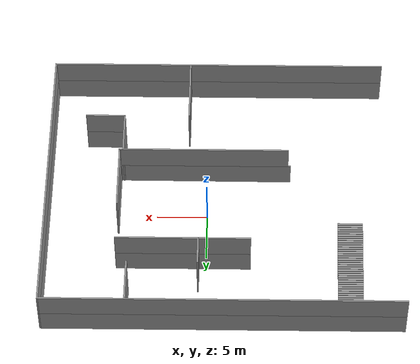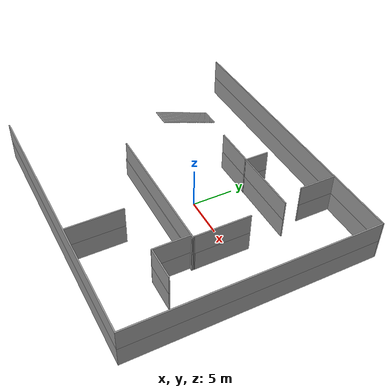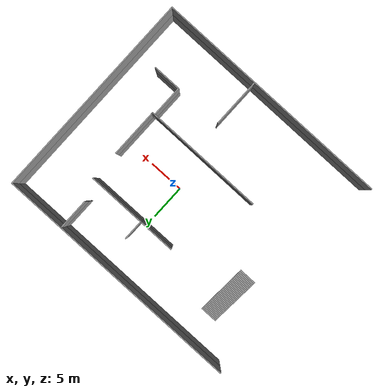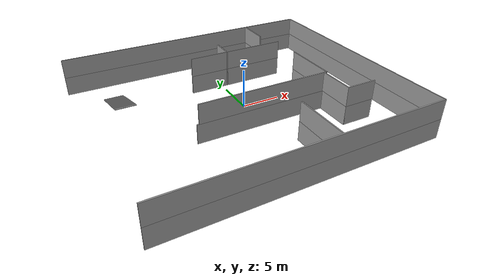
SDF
<sdf version="1.6">
 <model name="small_world">
  <pose>-1.73619 -1.30115 0 0 -0 0</pose>
  <link name="Stairs_3">
   <visual name="Stairs_3_Visual_0">
    <pose>-12.433 11.1173 0.035714 0 -0 0</pose>
    <geometry><box><size>2.5 0.214286 0.071429</size></box></geometry>
    <material>
     <script><uri>file://media/materials/scripts/gazebo.material</uri><name>Gazebo/Grey</name></script>
     <ambient>1 1 1 1</ambient>
    </material>
    <meta><layer>0</layer></meta>
   </visual>
   <collision name="Stairs_3_Collision_0">
    <geometry><box><size>2.5 0.214286 0.071429</size></box></geometry>
    <pose>-12.433 11.1173 0.035714 0 -0 0</pose>
   </collision>
   <visual name="Stairs_3_Visual_1">
    <pose>-12.433 10.903 0.107143 0 -0 0</pose>
    <geometry><box><size>2.5 0.214286 0.071429</size></box></geometry>
    <material>
     <script><uri>file://media/materials/scripts/gazebo.material</uri><name>Gazebo/Grey</name></script>
     <ambient>1 1 1 1</ambient>
    </material>
    <meta><layer>0</layer></meta>
   </visual>
   <collision name="Stairs_3_Collision_1">
    <geometry><box><size>2.5 0.214286 0.071429</size></box></geometry>
    <pose>-12.433 10.903 0.107143 0 -0 0</pose>
   </collision>
   <visual name="Stairs_3_Visual_2">
    <pose>-12.433 10.6887 0.178571 0 -0 0</pose>
    <geometry><box><size>2.5 0.214286 0.071429</size></box></geometry>
    <material>
     <script><uri>file://media/materials/scripts/gazebo.material</uri><name>Gazebo/Grey</name></script>
     <ambient>1 1 1 1</ambient>
    </material>
    <meta><layer>0</layer></meta>
   </visual>
   <collision name="Stairs_3_Collision_2">
    <geometry><box><size>2.5 0.214286 0.071429</size></box></geometry>
    <pose>-12.433 10.6887 0.178571 0 -0 0</pose>
   </collision>
   <visual name="Stairs_3_Visual_3">
    <pose>-12.433 10.4745 0.25 0 -0 0</pose>
    <geometry><box><size>2.5 0.214286 0.071429</size></box></geometry>
    <material>
     <script><uri>file://media/materials/scripts/gazebo.material</uri><name>Gazebo/Grey</name></script>
     <ambient>1 1 1 1</ambient>
    </material>
    <meta><layer>0</layer></meta>
   </visual>
   <collision name="Stairs_3_Collision_3">
    <geometry><box><size>2.5 0.214286 0.071429</size></box></geometry>
    <pose>-12.433 10.4745 0.25 0 -0 0</pose>
   </collision>
   <visual name="Stairs_3_Visual_4">
    <pose>-12.433 10.2602 0.321429 0 -0 0</pose>
    <geometry><box><size>2.5 0.214286 0.071429</size></box></geometry>
    <material>
     <script><uri>file://media/materials/scripts/gazebo.material</uri><name>Gazebo/Grey</name></script>
     <ambient>1 1 1 1</ambient>
    </material>
    <meta><layer>0</layer></meta>
   </visual>
   <collision name="Stairs_3_Collision_4">
    <geometry><box><size>2.5 0.214286 0.071429</size></box></geometry>
    <pose>-12.433 10.2602 0.321429 0 -0 0</pose>
   </collision>
   <visual name="Stairs_3_Visual_5">
    <pose>-12.433 10.0459 0.392857 0 -0 0</pose>
    <geometry><box><size>2.5 0.214286 0.071429</size></box></geometry>
    <material>
     <script><uri>file://media/materials/scripts/gazebo.material</uri><name>Gazebo/Grey</name></script>
     <ambient>1 1 1 1</ambient>
    </material>
    <meta><layer>0</layer></meta>
   </visual>
   <collision name="Stairs_3_Collision_5">
    <geometry><box><size>2.5 0.214286 0.071429</size></box></geometry>
    <pose>-12.433 10.0459 0.392857 0 -0 0</pose>
   </collision>
   <visual name="Stairs_3_Visual_6">
    <pose>-12.433 9.8316 0.464286 0 -0 0</pose>
    <geometry><box><size>2.5 0.214286 0.071429</size></box></geometry>
    <material>
     <script><uri>file://media/materials/scripts/gazebo.material</uri><name>Gazebo/Grey</name></script>
     <ambient>1 1 1 1</ambient>
    </material>
    <meta><layer>0</layer></meta>
   </visual>
   <collision name="Stairs_3_Collision_6">
    <geometry><box><size>2.5 0.214286 0.071429</size></box></geometry>
    <pose>-12.433 9.8316 0.464286 0 -0 0</pose>
   </collision>
   <visual name="Stairs_3_Visual_7">
    <pose>-12.433 9.61732 0.535714 0 -0 0</pose>
    <geometry><box><size>2.5 0.214286 0.071429</size></box></geometry>
    <material>
     <script><uri>file://media/materials/scripts/gazebo.material</uri><name>Gazebo/Grey</name></script>
     <ambient>1 1 1 1</ambient>
    </material>
    <meta><layer>0</layer></meta>
   </visual>
   <collision name="Stairs_3_Collision_7">
    <geometry><box><size>2.5 0.214286 0.071429</size></box></geometry>
    <pose>-12.433 9.61732 0.535714 0 -0 0</pose>
   </collision>
   <visual name="Stairs_3_Visual_8">
    <pose>-12.433 9.40303 0.607143 0 -0 0</pose>
    <geometry><box><size>2.5 0.214286 0.071429</size></box></geometry>
    <material>
     <script><uri>file://media/materials/scripts/gazebo.material</uri><name>Gazebo/Grey</name></script>
     <ambient>1 1 1 1</ambient>
    </material>
    <meta><layer>0</layer></meta>
   </visual>
   <collision name="Stairs_3_Collision_8">
    <geometry><box><size>2.5 0.214286 0.071429</size></box></geometry>
    <pose>-12.433 9.40303 0.607143 0 -0 0</pose>
   </collision>
   <visual name="Stairs_3_Visual_9">
    <pose>-12.433 9.18875 0.678571 0 -0 0</pose>
    <geometry><box><size>2.5 0.214286 0.071429</size></box></geometry>
    <material>
     <script><uri>file://media/materials/scripts/gazebo.material</uri><name>Gazebo/Grey</name></script>
     <ambient>1 1 1 1</ambient>
    </material>
    <meta><layer>0</layer></meta>
   </visual>
   <collision name="Stairs_3_Collision_9">
    <geometry><box><size>2.5 0.214286 0.071429</size></box></geometry>
    <pose>-12.433 9.18875 0.678571 0 -0 0</pose>
   </collision>
   <visual name="Stairs_3_Visual_10">
    <pose>-12.433 8.97446 0.75 0 -0 0</pose>
    <geometry><box><size>2.5 0.214286 0.071429</size></box></geometry>
    <material>
     <script><uri>file://media/materials/scripts/gazebo.material</uri><name>Gazebo/Grey</name></script>
     <ambient>1 1 1 1</ambient>
    </material>
    <meta><layer>0</layer></meta>
   </visual>
   <collision name="Stairs_3_Collision_10">
    <geometry><box><size>2.5 0.214286 0.071429</size></box></geometry>
    <pose>-12.433 8.97446 0.75 0 -0 0</pose>
   </collision>
   <visual name="Stairs_3_Visual_11">
    <pose>-12.433 8.76018 0.821429 0 -0 0</pose>
    <geometry><box><size>2.5 0.214286 0.071429</size></box></geometry>
    <material>
     <script><uri>file://media/materials/scripts/gazebo.material</uri><name>Gazebo/Grey</name></script>
     <ambient>1 1 1 1</ambient>
    </material>
    <meta><layer>0</layer></meta>
   </visual>
   <collision name="Stairs_3_Collision_11">
    <geometry><box><size>2.5 0.214286 0.071429</size></box></geometry>
    <pose>-12.433 8.76018 0.821429 0 -0 0</pose>
   </collision>
   <visual name="Stairs_3_Visual_12">
    <pose>-12.433 8.54589 0.892857 0 -0 0</pose>
    <geometry><box><size>2.5 0.214286 0.071429</size></box></geometry>
    <material>
     <script><uri>file://media/materials/scripts/gazebo.material</uri><name>Gazebo/Grey</name></script>
     <ambient>1 1 1 1</ambient>
    </material>
    <meta><layer>0</layer></meta>
   </visual>
   <collision name="Stairs_3_Collision_12">
    <geometry><box><size>2.5 0.214286 0.071429</size></box></geometry>
    <pose>-12.433 8.54589 0.892857 0 -0 0</pose>
   </collision>
   <visual name="Stairs_3_Visual_13">
    <pose>-12.433 8.3316 0.964286 0 -0 0</pose>
    <geometry><box><size>2.5 0.214286 0.071429</size></box></geometry>
    <material>
     <script><uri>file://media/materials/scripts/gazebo.material</uri><name>Gazebo/Grey</name></script>
     <ambient>1 1 1 1</ambient>
    </material>
    <meta><layer>0</layer></meta>
   </visual>
   <collision name="Stairs_3_Collision_13">
    <geometry><box><size>2.5 0.214286 0.071429</size></box></geometry>
    <pose>-12.433 8.3316 0.964286 0 -0 0</pose>
   </collision>
   <visual name="Stairs_3_Visual_14">
    <pose>-12.433 8.11732 1.03571 0 -0 0</pose>
    <geometry><box><size>2.5 0.214286 0.071429</size></box></geometry>
    <material>
     <script><uri>file://media/materials/scripts/gazebo.material</uri><name>Gazebo/Grey</name></script>
     <ambient>1 1 1 1</ambient>
    </material>
    <meta><layer>0</layer></meta>
   </visual>
   <collision name="Stairs_3_Collision_14">
    <geometry><box><size>2.5 0.214286 0.071429</size></box></geometry>
    <pose>-12.433 8.11732 1.03571 0 -0 0</pose>
   </collision>
   <visual name="Stairs_3_Visual_15">
    <pose>-12.433 7.90303 1.10714 0 -0 0</pose>
    <geometry><box><size>2.5 0.214286 0.071429</size></box></geometry>
    <material>
     <script><uri>file://media/materials/scripts/gazebo.material</uri><name>Gazebo/Grey</name></script>
     <ambient>1 1 1 1</ambient>
    </material>
    <meta><layer>0</layer></meta>
   </visual>
   <collision name="Stairs_3_Collision_15">
    <geometry><box><size>2.5 0.214286 0.071429</size></box></geometry>
    <pose>-12.433 7.90303 1.10714 0 -0 0</pose>
   </collision>
   <visual name="Stairs_3_Visual_16">
    <pose>-12.433 7.68875 1.17857 0 -0 0</pose>
    <geometry><box><size>2.5 0.214286 0.071429</size></box></geometry>
    <material>
     <script><uri>file://media/materials/scripts/gazebo.material</uri><name>Gazebo/Grey</name></script>
     <ambient>1 1 1 1</ambient>
    </material>
    <meta><layer>0</layer></meta>
   </visual>
   <collision name="Stairs_3_Collision_16">
    <geometry><box><size>2.5 0.214286 0.071429</size></box></geometry>
    <pose>-12.433 7.68875 1.17857 0 -0 0</pose>
   </collision>
   <visual name="Stairs_3_Visual_17">
    <pose>-12.433 7.47446 1.25 0 -0 0</pose>
    <geometry><box><size>2.5 0.214286 0.071429</size></box></geometry>
    <material>
     <script><uri>file://media/materials/scripts/gazebo.material</uri><name>Gazebo/Grey</name></script>
     <ambient>1 1 1 1</ambient>
    </material>
    <meta><layer>0</layer></meta>
   </visual>
   <collision name="Stairs_3_Collision_17">
    <geometry><box><size>2.5 0.214286 0.071429</size></box></geometry>
    <pose>-12.433 7.47446 1.25 0 -0 0</pose>
   </collision>
   <visual name="Stairs_3_Visual_18">
    <pose>-12.433 7.26018 1.32143 0 -0 0</pose>
    <geometry><box><size>2.5 0.214286 0.071429</size></box></geometry>
    <material>
     <script><uri>file://media/materials/scripts/gazebo.material</uri><name>Gazebo/Grey</name></script>
     <ambient>1 1 1 1</ambient>
    </material>
    <meta><layer>0</layer></meta>
   </visual>
   <collision name="Stairs_3_Collision_18">
    <geometry><box><size>2.5 0.214286 0.071429</size></box></geometry>
    <pose>-12.433 7.26018 1.32143 0 -0 0</pose>
   </collision>
   <visual name="Stairs_3_Visual_19">
    <pose>-12.433 7.04589 1.39286 0 -0 0</pose>
    <geometry><box><size>2.5 0.214286 0.071429</size></box></geometry>
    <material>
     <script><uri>file://media/materials/scripts/gazebo.material</uri><name>Gazebo/Grey</name></script>
     <ambient>1 1 1 1</ambient>
    </material>
    <meta><layer>0</layer></meta>
   </visual>
   <collision name="Stairs_3_Collision_19">
    <geometry><box><size>2.5 0.214286 0.071429</size></box></geometry>
    <pose>-12.433 7.04589 1.39286 0 -0 0</pose>
   </collision>
   <visual name="Stairs_3_Visual_20">
    <pose>-12.433 6.8316 1.46429 0 -0 0</pose>
    <geometry><box><size>2.5 0.214286 0.071429</size></box></geometry>
    <material>
     <script><uri>file://media/materials/scripts/gazebo.material</uri><name>Gazebo/Grey</name></script>
     <ambient>1 1 1 1</ambient>
    </material>
    <meta><layer>0</layer></meta>
   </visual>
   <collision name="Stairs_3_Collision_20">
    <geometry><box><size>2.5 0.214286 0.071429</size></box></geometry>
    <pose>-12.433 6.8316 1.46429 0 -0 0</pose>
   </collision>
   <visual name="Stairs_3_Visual_21">
    <pose>-12.433 6.61732 1.53571 0 -0 0</pose>
    <geometry><box><size>2.5 0.214286 0.071429</size></box></geometry>
    <material>
     <script><uri>file://media/materials/scripts/gazebo.material</uri><name>Gazebo/Grey</name></script>
     <ambient>1 1 1 1</ambient>
    </material>
    <meta><layer>0</layer></meta>
   </visual>
   <collision name="Stairs_3_Collision_21">
    <geometry><box><size>2.5 0.214286 0.071429</size></box></geometry>
    <pose>-12.433 6.61732 1.53571 0 -0 0</pose>
   </collision>
   <visual name="Stairs_3_Visual_22">
    <pose>-12.433 6.40303 1.60714 0 -0 0</pose>
    <geometry><box><size>2.5 0.214286 0.071429</size></box></geometry>
    <material>
     <script><uri>file://media/materials/scripts/gazebo.material</uri><name>Gazebo/Grey</name></script>
     <ambient>1 1 1 1</ambient>
    </material>
    <meta><layer>0</layer></meta>
   </visual>
   <collision name="Stairs_3_Collision_22">
    <geometry><box><size>2.5 0.214286 0.071429</size></box></geometry>
    <pose>-12.433 6.40303 1.60714 0 -0 0</pose>
   </collision>
   <visual name="Stairs_3_Visual_23">
    <pose>-12.433 6.18875 1.67857 0 -0 0</pose>
    <geometry><box><size>2.5 0.214286 0.071429</size></box></geometry>
    <material>
     <script><uri>file://media/materials/scripts/gazebo.material</uri><name>Gazebo/Grey</name></script>
     <ambient>1 1 1 1</ambient>
    </material>
    <meta><layer>0</layer></meta>
   </visual>
   <collision name="Stairs_3_Collision_23">
    <geometry><box><size>2.5 0.214286 0.071429</size></box></geometry>
    <pose>-12.433 6.18875 1.67857 0 -0 0</pose>
   </collision>
   <visual name="Stairs_3_Visual_24">
    <pose>-12.433 5.97446 1.75 0 -0 0</pose>
    <geometry><box><size>2.5 0.214286 0.071429</size></box></geometry>
    <material>
     <script><uri>file://media/materials/scripts/gazebo.material</uri><name>Gazebo/Grey</name></script>
     <ambient>1 1 1 1</ambient>
    </material>
    <meta><layer>0</layer></meta>
   </visual>
   <collision name="Stairs_3_Collision_24">
    <geometry><box><size>2.5 0.214286 0.071429</size></box></geometry>
    <pose>-12.433 5.97446 1.75 0 -0 0</pose>
   </collision>
   <visual name="Stairs_3_Visual_25">
    <pose>-12.433 5.76018 1.82143 0 -0 0</pose>
    <geometry><box><size>2.5 0.214286 0.071429</size></box></geometry>
    <material>
     <script><uri>file://media/materials/scripts/gazebo.material</uri><name>Gazebo/Grey</name></script>
     <ambient>1 1 1 1</ambient>
    </material>
    <meta><layer>0</layer></meta>
   </visual>
   <collision name="Stairs_3_Collision_25">
    <geometry><box><size>2.5 0.214286 0.071429</size></box></geometry>
    <pose>-12.433 5.76018 1.82143 0 -0 0</pose>
   </collision>
   <visual name="Stairs_3_Visual_26">
    <pose>-12.433 5.54589 1.89286 0 -0 0</pose>
    <geometry><box><size>2.5 0.214286 0.071429</size></box></geometry>
    <material>
     <script><uri>file://media/materials/scripts/gazebo.material</uri><name>Gazebo/Grey</name></script>
     <ambient>1 1 1 1</ambient>
    </material>
    <meta><layer>0</layer></meta>
   </visual>
   <collision name="Stairs_3_Collision_26">
    <geometry><box><size>2.5 0.214286 0.071429</size></box></geometry>
    <pose>-12.433 5.54589 1.89286 0 -0 0</pose>
   </collision>
   <visual name="Stairs_3_Visual_27">
    <pose>-12.433 5.3316 1.96429 0 -0 0</pose>
    <geometry><box><size>2.5 0.214286 0.071429</size></box></geometry>
    <material>
     <script><uri>file://media/materials/scripts/gazebo.material</uri><name>Gazebo/Grey</name></script>
     <ambient>1 1 1 1</ambient>
    </material>
    <meta><layer>0</layer></meta>
   </visual>
   <collision name="Stairs_3_Collision_27">
    <geometry><box><size>2.5 0.214286 0.071429</size></box></geometry>
    <pose>-12.433 5.3316 1.96429 0 -0 0</pose>
   </collision>
   <visual name="Stairs_3_Visual_28">
    <pose>-12.433 5.11732 2.03571 0 -0 0</pose>
    <geometry><box><size>2.5 0.214286 0.071429</size></box></geometry>
    <material>
     <script><uri>file://media/materials/scripts/gazebo.material</uri><name>Gazebo/Grey</name></script>
     <ambient>1 1 1 1</ambient>
    </material>
    <meta><layer>0</layer></meta>
   </visual>
   <collision name="Stairs_3_Collision_28">
    <geometry><box><size>2.5 0.214286 0.071429</size></box></geometry>
    <pose>-12.433 5.11732 2.03571 0 -0 0</pose>
   </collision>
   <visual name="Stairs_3_Visual_29">
    <pose>-12.433 4.90303 2.10714 0 -0 0</pose>
    <geometry><box><size>2.5 0.214286 0.071429</size></box></geometry>
    <material>
     <script><uri>file://media/materials/scripts/gazebo.material</uri><name>Gazebo/Grey</name></script>
     <ambient>1 1 1 1</ambient>
    </material>
    <meta><layer>0</layer></meta>
   </visual>
   <collision name="Stairs_3_Collision_29">
    <geometry><box><size>2.5 0.214286 0.071429</size></box></geometry>
    <pose>-12.433 4.90303 2.10714 0 -0 0</pose>
   </collision>
   <visual name="Stairs_3_Visual_30">
    <pose>-12.433 4.68875 2.17857 0 -0 0</pose>
    <geometry><box><size>2.5 0.214286 0.071429</size></box></geometry>
    <material>
     <script><uri>file://media/materials/scripts/gazebo.material</uri><name>Gazebo/Grey</name></script>
     <ambient>1 1 1 1</ambient>
    </material>
    <meta><layer>0</layer></meta>
   </visual>
   <collision name="Stairs_3_Collision_30">
    <geometry><box><size>2.5 0.214286 0.071429</size></box></geometry>
    <pose>-12.433 4.68875 2.17857 0 -0 0</pose>
   </collision>
   <visual name="Stairs_3_Visual_31">
    <pose>-12.433 4.47446 2.25 0 -0 0</pose>
    <geometry><box><size>2.5 0.214286 0.071429</size></box></geometry>
    <material>
     <script><uri>file://media/materials/scripts/gazebo.material</uri><name>Gazebo/Grey</name></script>
     <ambient>1 1 1 1</ambient>
    </material>
    <meta><layer>0</layer></meta>
   </visual>
   <collision name="Stairs_3_Collision_31">
    <geometry><box><size>2.5 0.214286 0.071429</size></box></geometry>
    <pose>-12.433 4.47446 2.25 0 -0 0</pose>
   </collision>
   <visual name="Stairs_3_Visual_32">
    <pose>-12.433 4.26018 2.32143 0 -0 0</pose>
    <geometry><box><size>2.5 0.214286 0.071429</size></box></geometry>
    <material>
     <script><uri>file://media/materials/scripts/gazebo.material</uri><name>Gazebo/Grey</name></script>
     <ambient>1 1 1 1</ambient>
    </material>
    <meta><layer>0</layer></meta>
   </visual>
   <collision name="Stairs_3_Collision_32">
    <geometry><box><size>2.5 0.214286 0.071429</size></box></geometry>
    <pose>-12.433 4.26018 2.32143 0 -0 0</pose>
   </collision>
   <visual name="Stairs_3_Visual_33">
    <pose>-12.433 4.04589 2.39286 0 -0 0</pose>
    <geometry><box><size>2.5 0.214286 0.071429</size></box></geometry>
    <material>
     <script><uri>file://media/materials/scripts/gazebo.material</uri><name>Gazebo/Grey</name></script>
     <ambient>1 1 1 1</ambient>
    </material>
    <meta><layer>0</layer></meta>
   </visual>
   <collision name="Stairs_3_Collision_33">
    <geometry><box><size>2.5 0.214286 0.071429</size></box></geometry>
    <pose>-12.433 4.04589 2.39286 0 -0 0</pose>
   </collision>
   <visual name="Stairs_3_Visual_34">
    <pose>-12.433 3.83161 2.46429 0 -0 0</pose>
    <geometry><box><size>2.5 0.214286 0.071429</size></box></geometry>
    <material>
     <script><uri>file://media/materials/scripts/gazebo.material</uri><name>Gazebo/Grey</name></script>
     <ambient>1 1 1 1</ambient>
    </material>
    <meta><layer>0</layer></meta>
   </visual>
   <collision name="Stairs_3_Collision_34">
    <geometry><box><size>2.5 0.214286 0.071429</size></box></geometry>
    <pose>-12.433 3.83161 2.46429 0 -0 0</pose>
   </collision>
  </link>
  <link name="Wall_1">
   <collision name="Wall_1_Collision">
    <geometry><box><size>33.75 0.15 2.5</size></box></geometry>
    <pose>0 0 1.25 0 -0 0</pose>
   </collision>
   <visual name="Wall_1_Visual">
    <pose>0 0 1.25 0 -0 0</pose>
    <geometry><box><size>33.75 0.15 2.5</size></box></geometry>
    <material>
     <script><uri>file://media/materials/scripts/gazebo.material</uri><name>Gazebo/Grey</name></script>
     <ambient>1 1 1 1</ambient>
    </material>
    <meta><layer>0</layer></meta>
   </visual>
   <pose>0.788904 -14.7928 0 0 -0 0</pose>
  </link>
  <link name="Wall_2">
   <collision name="Wall_2_Collision">
    <geometry><box><size>29.75 0.15 2.5</size></box></geometry>
    <pose>0 0 1.25 0 -0 0</pose>
   </collision>
   <visual name="Wall_2_Visual">
    <pose>0 0 1.25 0 -0 0</pose>
    <geometry><box><size>29.75 0.15 2.5</size></box></geometry>
    <material>
     <script><uri>file://media/materials/scripts/gazebo.material</uri><name>Gazebo/Grey</name></script>
     <ambient>1 1 1 1</ambient>
    </material>
    <meta><layer>0</layer></meta>
   </visual>
   <pose>17.5889 0.007225 0 0 -0 1.5708</pose>
  </link>
  <link name="Wall_3">
   <collision name="Wall_3_Collision">
    <geometry><box><size>35.25 0.15 2.5</size></box></geometry>
    <pose>0 0 1.25 0 -0 0</pose>
   </collision>
   <visual name="Wall_3_Visual">
    <pose>0 0 1.25 0 -0 0</pose>
    <geometry><box><size>35.25 0.15 2.5</size></box></geometry>
    <material>
     <script><uri>file://media/materials/scripts/gazebo.material</uri><name>Gazebo/Grey</name></script>
     <ambient>1 1 1 1</ambient>
    </material>
    <meta><layer>0</layer></meta>
   </visual>
   <pose>0.038904 14.8072 0 0 -0 3.14159</pose>
  </link>
  <link name="Wall_34">
   <collision name="Wall_34_Collision">
    <geometry><box><size>13.25 0.15 2.5</size></box></geometry>
    <pose>0 0 1.25 0 -0 0</pose>
   </collision>
   <visual name="Wall_34_Visual">
    <pose>0 0 1.25 0 -0 0</pose>
    <geometry><box><size>13.25 0.15 2.5</size></box></geometry>
    <material>
     <script><uri>file://media/materials/scripts/gazebo.material</uri><name>Gazebo/Grey</name></script>
     <ambient>1 1 1 1</ambient>
    </material>
    <meta><layer>0</layer></meta>
   </visual>
   <pose>3.9889 7.55722 0 0 -0 0</pose>
  </link>
  <link name="Wall_36">
   <collision name="Wall_36_Collision">
    <geometry><box><size>17.2501 0.15 2.5</size></box></geometry>
    <pose>0 0 1.25 0 -0 0</pose>
   </collision>
   <visual name="Wall_36_Visual">
    <pose>0 0 1.25 0 -0 0</pose>
    <geometry><box><size>17.2501 0.15 2.5</size></box></geometry>
    <material>
     <script><uri>file://media/materials/scripts/gazebo.material</uri><name>Gazebo/Grey</name></script>
     <ambient>1 1 1 1</ambient>
    </material>
    <meta><layer>0</layer></meta>
   </visual>
   <pose>1.99377 -3.49918 0 0 -0 -0.003558</pose>
  </link>
  <link name="Wall_39">
   <collision name="Wall_39_Collision">
    <geometry><box><size>0.389409 0.15 2.5</size></box></geometry>
    <pose>0 0 1.25 0 -0 0</pose>
   </collision>
   <visual name="Wall_39_Visual">
    <pose>0 0 1.25 0 -0 0</pose>
    <geometry><box><size>0.389409 0.15 2.5</size></box></geometry>
    <material>
     <script><uri>file://media/materials/scripts/gazebo.material</uri><name>Gazebo/Grey</name></script>
     <ambient>1 1 1 1</ambient>
    </material>
    <meta><layer>0</layer></meta>
   </visual>
   <pose>10.5213 -3.41118 0 0 -0 -1.71809</pose>
  </link>
  <link name="Wall_41">
   <collision name="Wall_41_Collision">
    <geometry><box><size>6.75 0.15 2.5</size></box></geometry>
    <pose>0 0 1.25 0 -0 0</pose>
   </collision>
   <visual name="Wall_41_Visual">
    <pose>0 0 1.25 0 -0 0</pose>
    <geometry><box><size>6.75 0.15 2.5</size></box></geometry>
    <material>
     <script><uri>file://media/materials/scripts/gazebo.material</uri><name>Gazebo/Grey</name></script>
     <ambient>1 1 1 1</ambient>
    </material>
    <meta><layer>0</layer></meta>
   </visual>
   <pose>10.5389 0.007225 0 0 -0 1.5708</pose>
  </link>
  <link name="Wall_43">
   <collision name="Wall_43_Collision">
    <geometry><box><size>3 0.15 2.5</size></box></geometry>
    <pose>0 0 1.25 0 -0 0</pose>
   </collision>
   <visual name="Wall_43_Visual">
    <pose>0 0 1.25 0 -0 0</pose>
    <geometry><box><size>3 0.15 2.5</size></box></geometry>
    <material>
     <script><uri>file://media/materials/scripts/gazebo.material</uri><name>Gazebo/Grey</name></script>
     <ambient>1 1 1 1</ambient>
    </material>
    <meta><layer>0</layer></meta>
   </visual>
   <pose>2.49219 8.93692 0 0 -0 1.5708</pose>
  </link>
  <link name="Wall_45">
   <collision name="Wall_45_Collision">
    <geometry><box><size>4.5 0.15 2.5</size></box></geometry>
    <pose>0 0 1.25 0 -0 0</pose>
   </collision>
   <visual name="Wall_45_Visual">
    <pose>0 0 1.25 0 -0 0</pose>
    <geometry><box><size>4.5 0.15 2.5</size></box></geometry>
    <material>
     <script><uri>file://media/materials/scripts/gazebo.material</uri><name>Gazebo/Grey</name></script>
     <ambient>1 1 1 1</ambient>
    </material>
    <meta><layer>0</layer></meta>
   </visual>
   <pose>9.34051 12.6133 0 0 -0 -1.5708</pose>
  </link>
  <link name="Wall_47">
   <collision name="Wall_47_Collision">
    <geometry><box><size>4.5 0.15 2.5</size></box></geometry>
    <pose>0 0 1.25 0 -0 0</pose>
   </collision>
   <visual name="Wall_47_Visual">
    <pose>0 0 1.25 0 -0 0</pose>
    <geometry><box><size>4.5 0.15 2.5</size></box></geometry>
    <material>
     <script><uri>file://media/materials/scripts/gazebo.material</uri><name>Gazebo/Grey</name></script>
     <ambient>1 1 1 1</ambient>
    </material>
    <meta><layer>0</layer></meta>
   </visual>
   <pose>10.1965 -5.68459 0 0 -0 -1.5708</pose>
  </link>
  <link name="Wall_48">
   <collision name="Wall_48_Collision">
    <geometry><box><size>4 0.15 2.5</size></box></geometry>
    <pose>0 0 1.25 0 -0 0</pose>
   </collision>
   <visual name="Wall_48_Visual">
    <pose>0 0 1.25 0 -0 0</pose>
    <geometry><box><size>4 0.15 2.5</size></box></geometry>
    <material>
     <script><uri>file://media/materials/scripts/gazebo.material</uri><name>Gazebo/Grey</name></script>
     <ambient>1 1 1 1</ambient>
    </material>
    <meta><layer>0</layer></meta>
   </visual>
   <pose>12.1215 -7.85959 0 0 -0 0</pose>
  </link>
  <link name="Wall_50">
   <collision name="Wall_50_Collision">
    <geometry><box><size>6.75 0.15 2.5</size></box></geometry>
    <pose>0 0 1.25 0 -0 0</pose>
   </collision>
   <visual name="Wall_50_Visual">
    <pose>0 0 1.25 0 -0 0</pose>
    <geometry><box><size>6.75 0.15 2.5</size></box></geometry>
    <material>
     <script><uri>file://media/materials/scripts/gazebo.material</uri><name>Gazebo/Grey</name></script>
     <ambient>1 1 1 1</ambient>
    </material>
    <meta><layer>0</layer></meta>
   </visual>
   <pose>3.66924 -11.3381 0 0 -0 1.5708</pose>
  </link>
  <link name="Wall_66">
   <collision name="Wall_66_Collision">
    <geometry><box><size>33.75 0.15 2.5</size></box></geometry>
    <pose>0 0 1.25 0 -0 0</pose>
   </collision>
   <visual name="Wall_66_Visual">
    <pose>0 0 1.25 0 -0 0</pose>
    <geometry><box><size>33.75 0.15 2.5</size></box></geometry>
    <material>
     <script><uri>file://media/materials/scripts/gazebo.material</uri><name>Gazebo/Grey</name></script>
     <ambient>1 1 1 1</ambient>
    </material>
    <meta><layer>1</layer></meta>
   </visual>
   <pose>0.788904 -14.7928 2.5 0 -0 0</pose>
  </link>
  <link name="Wall_67">
   <collision name="Wall_67_Collision">
    <geometry><box><size>29.75 0.15 2.5</size></box></geometry>
    <pose>0 0 1.25 0 -0 0</pose>
   </collision>
   <visual name="Wall_67_Visual">
    <pose>0 0 1.25 0 -0 0</pose>
    <geometry><box><size>29.75 0.15 2.5</size></box></geometry>
    <material>
     <script><uri>file://media/materials/scripts/gazebo.material</uri><name>Gazebo/Grey</name></script>
     <ambient>1 1 1 1</ambient>
    </material>
    <meta><layer>1</layer></meta>
   </visual>
   <pose>17.5889 0.007225 2.5 0 -0 1.5708</pose>
  </link>
  <link name="Wall_68">
   <collision name="Wall_68_Collision">
    <geometry><box><size>35.25 0.15 2.5</size></box></geometry>
    <pose>0 0 1.25 0 -0 0</pose>
   </collision>
   <visual name="Wall_68_Visual">
    <pose>0 0 1.25 0 -0 0</pose>
    <geometry><box><size>35.25 0.15 2.5</size></box></geometry>
    <material>
     <script><uri>file://media/materials/scripts/gazebo.material</uri><name>Gazebo/Grey</name></script>
     <ambient>1 1 1 1</ambient>
    </material>
    <meta><layer>1</layer></meta>
   </visual>
   <pose>0.038904 14.8072 2.5 0 -0 3.14159</pose>
  </link>
  <link name="Wall_75">
   <collision name="Wall_75_Collision">
    <geometry><box><size>13.25 0.15 2.5</size></box></geometry>
    <pose>0 0 1.25 0 -0 0</pose>
   </collision>
   <visual name="Wall_75_Visual">
    <pose>0 0 1.25 0 -0 0</pose>
    <geometry><box><size>13.25 0.15 2.5</size></box></geometry>
    <material>
     <script><uri>file://media/materials/scripts/gazebo.material</uri><name>Gazebo/Grey</name></script>
     <ambient>1 1 1 1</ambient>
    </material>
    <meta><layer>1</layer></meta>
   </visual>
   <pose>3.9889 7.55722 2.5 0 -0 0</pose>
  </link>
  <link name="Wall_77">
   <collision name="Wall_77_Collision">
    <geometry><box><size>0.327223 0.15 2.5</size></box></geometry>
    <pose>0 0 1.25 0 -0 0</pose>
   </collision>
   <visual name="Wall_77_Visual">
    <pose>0 0 1.25 0 -0 0</pose>
    <geometry><box><size>0.327223 0.15 2.5</size></box></geometry>
    <material>
     <script><uri>file://media/materials/scripts/gazebo.material</uri><name>Gazebo/Grey</name></script>
     <ambient>1 1 1 1</ambient>
    </material>
    <meta><layer>1</layer></meta>
   </visual>
   <pose>10.5413 -3.38135 2.5 0 -0 -1.54334</pose>
  </link>
  <link name="Wall_78">
   <collision name="Wall_78_Collision">
    <geometry><box><size>6.75 0.15 2.5</size></box></geometry>
    <pose>0 0 1.25 0 -0 0</pose>
   </collision>
   <visual name="Wall_78_Visual">
    <pose>0 0 1.25 0 -0 0</pose>
    <geometry><box><size>6.75 0.15 2.5</size></box></geometry>
    <material>
     <script><uri>file://media/materials/scripts/gazebo.material</uri><name>Gazebo/Grey</name></script>
     <ambient>1 1 1 1</ambient>
    </material>
    <meta><layer>1</layer></meta>
   </visual>
   <pose>10.5389 0.007225 2.5 0 -0 1.5708</pose>
  </link>
  <link name="Wall_79">
   <collision name="Wall_79_Collision">
    <geometry><box><size>3 0.15 2.5</size></box></geometry>
    <pose>0 0 1.25 0 -0 0</pose>
   </collision>
   <visual name="Wall_79_Visual">
    <pose>0 0 1.25 0 -0 0</pose>
    <geometry><box><size>3 0.15 2.5</size></box></geometry>
    <material>
     <script><uri>file://media/materials/scripts/gazebo.material</uri><name>Gazebo/Grey</name></script>
     <ambient>1 1 1 1</ambient>
    </material>
    <meta><layer>1</layer></meta>
   </visual>
   <pose>2.49219 8.93692 2.5 0 -0 1.5708</pose>
  </link>
  <link name="Wall_80">
   <collision name="Wall_80_Collision">
    <geometry><box><size>4.5 0.15 2.5</size></box></geometry>
    <pose>0 0 1.25 0 -0 0</pose>
   </collision>
   <visual name="Wall_80_Visual">
    <pose>0 0 1.25 0 -0 0</pose>
    <geometry><box><size>4.5 0.15 2.5</size></box></geometry>
    <material>
     <script><uri>file://media/materials/scripts/gazebo.material</uri><name>Gazebo/Grey</name></script>
     <ambient>1 1 1 1</ambient>
    </material>
    <meta><layer>1</layer></meta>
   </visual>
   <pose>9.34051 12.6133 2.5 0 -0 -1.5708</pose>
  </link>
  <link name="Wall_81">
   <collision name="Wall_81_Collision">
    <geometry><box><size>4.5 0.15 2.5</size></box></geometry>
    <pose>0 0 1.25 0 -0 0</pose>
   </collision>
   <visual name="Wall_81_Visual">
    <pose>0 0 1.25 0 -0 0</pose>
    <geometry><box><size>4.5 0.15 2.5</size></box></geometry>
    <material>
     <script><uri>file://media/materials/scripts/gazebo.material</uri><name>Gazebo/Grey</name></script>
     <ambient>1 1 1 1</ambient>
    </material>
    <meta><layer>1</layer></meta>
   </visual>
   <pose>10.1965 -5.68459 2.5 0 -0 -1.5708</pose>
  </link>
  <link name="Wall_82">
   <collision name="Wall_82_Collision">
    <geometry><box><size>4 0.15 2.5</size></box></geometry>
    <pose>0 0 1.25 0 -0 0</pose>
   </collision>
   <visual name="Wall_82_Visual">
    <pose>0 0 1.25 0 -0 0</pose>
    <geometry><box><size>4 0.15 2.5</size></box></geometry>
    <material>
     <script><uri>file://media/materials/scripts/gazebo.material</uri><name>Gazebo/Grey</name></script>
     <ambient>1 1 1 1</ambient>
    </material>
    <meta><layer>1</layer></meta>
   </visual>
   <pose>12.1215 -7.85959 2.5 0 -0 0</pose>
  </link>
  <link name="Wall_83">
   <collision name="Wall_83_Collision">
    <geometry><box><size>6.75 0.15 2.5</size></box></geometry>
    <pose>0 0 1.25 0 -0 0</pose>
   </collision>
   <visual name="Wall_83_Visual">
    <pose>0 0 1.25 0 -0 0</pose>
    <geometry><box><size>6.75 0.15 2.5</size></box></geometry>
    <material>
     <script><uri>file://media/materials/scripts/gazebo.material</uri><name>Gazebo/Grey</name></script>
     <ambient>1 1 1 1</ambient>
    </material>
    <meta><layer>1</layer></meta>
   </visual>
   <pose>3.66924 -11.3381 2.5 0 -0 1.5708</pose>
  </link>
  <link name="Wall_93">
   <collision name="Wall_93_Collision">
    <geometry><box><size>17 0.15 2.5</size></box></geometry>
    <pose>0 0 1.25 0 -0 0</pose>
   </collision>
   <visual name="Wall_93_Visual">
    <pose>0 0 1.25 0 -0 0</pose>
    <geometry><box><size>17 0.15 2.5</size></box></geometry>
    <material>
     <script><uri>file://media/materials/scripts/gazebo.material</uri><name>Gazebo/Grey</name></script>
     <ambient>1 1 1 1</ambient>
    </material>
    <meta><layer>1</layer></meta>
   </visual>
   <pose>2.11877 -3.46993 2.5 0 -0 3.14159</pose>
  </link>
  <static>1</static>
 </model>
</sdf>
